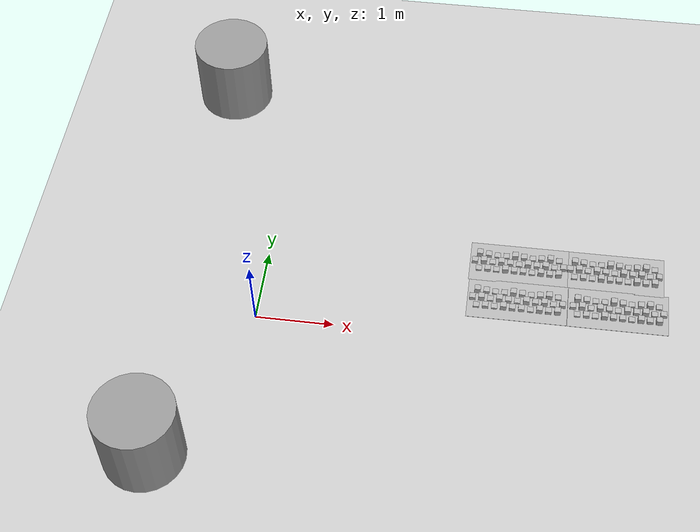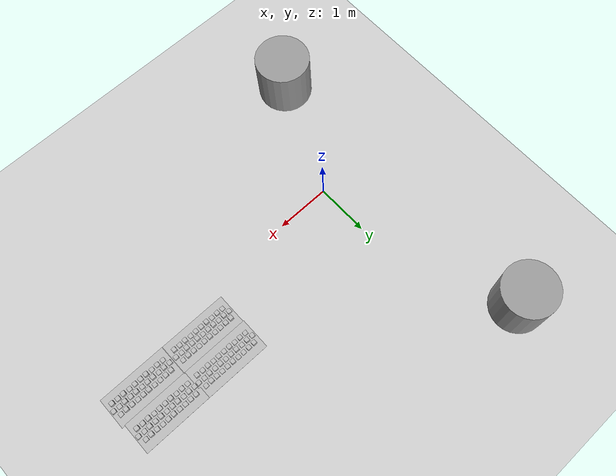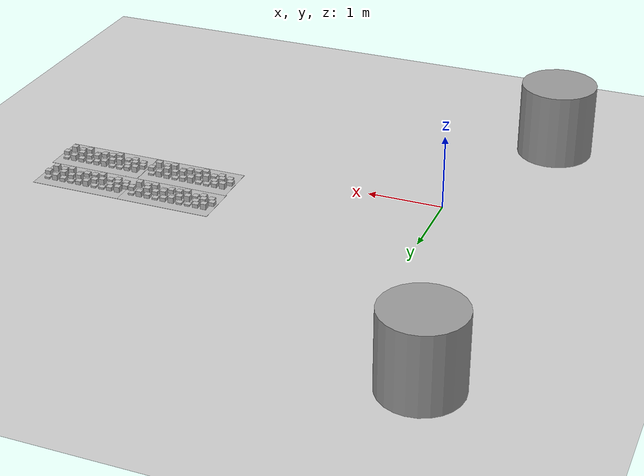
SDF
<sdf version="1.6">
 <world name="default">
  <model name="ground_plane">
   <static>1</static>
   <link name="link">
    <collision name="collision">
     <geometry><plane><normal>0 0 1</normal><size>100 100</size></plane></geometry>
     <surface><friction><ode><mu>100</mu><mu2>50</mu2></ode></friction></surface>
    </collision>
    <visual name="visual">
     <cast_shadows>0</cast_shadows>
     <geometry><plane><normal>0 0 1</normal><size>100 100</size></plane></geometry>
     <material>
      <script><uri>file://media/materials/scripts/gazebo.material</uri><name>Gazebo/Grey</name></script>
     </material>
    </visual>
   </link>
  </model>
  <model name="frc2016_roughterrain_clone">
   <static>1</static>
   <link name="link">
    <visual name="platform">
     <pose>0 0 0.08269 0 -0 0</pose>
     <geometry><box><size>1.27 0.5969 0.003175</size></box></geometry>
    </visual>
    <collision name="platform">
     <pose>0 0 0.08269 0 -0 0</pose>
     <geometry><box><size>1.27 0.5969 0.003175</size></box></geometry>
    </collision>
    <visual name="row1_block1_sm">
     <pose>0.51435 0.1143 0.09698 0 -0 0</pose>
     <geometry><box><size>0.0762 0.0762 0.0254</size></box></geometry>
    </visual>
    <collision name="row1_block1_sm">
     <pose>0.51435 0.1143 0.09698 0 -0 0</pose>
     <geometry><box><size>0.0762 0.0762 0.0254</size></box></geometry>
    </collision>
    <visual name="row1_block2_lg">
     <pose>0.40005 0.1143 0.12238 0 -0 0</pose>
     <geometry><box><size>0.0762 0.0762 0.0762</size></box></geometry>
    </visual>
    <collision name="row1_block2_lg">
     <pose>0.40005 0.1143 0.12238 0 -0 0</pose>
     <geometry><box><size>0.0762 0.0762 0.0762</size></box></geometry>
    </collision>
    <visual name="row1_block3_md">
     <pose>0.28575 0.1143 0.10968 0 -0 0</pose>
     <geometry><box><size>0.0762 0.0762 0.0508</size></box></geometry>
    </visual>
    <collision name="row1_block3_md">
     <pose>0.28575 0.1143 0.10968 0 -0 0</pose>
     <geometry><box><size>0.0762 0.0762 0.0508</size></box></geometry>
    </collision>
    <visual name="row1_block4_sm">
     <pose>0.17145 0.1143 0.09698 0 -0 0</pose>
     <geometry><box><size>0.0762 0.0762 0.0254</size></box></geometry>
    </visual>
    <collision name="row1_block4_sm">
     <pose>0.17145 0.1143 0.09698 0 -0 0</pose>
     <geometry><box><size>0.0762 0.0762 0.0254</size></box></geometry>
    </collision>
    <visual name="row1_block5_md">
     <pose>0.05715 0.1143 0.10968 0 -0 0</pose>
     <geometry><box><size>0.0762 0.0762 0.0508</size></box></geometry>
    </visual>
    <collision name="row1_block5_md">
     <pose>0.05715 0.1143 0.10968 0 -0 0</pose>
     <geometry><box><size>0.0762 0.0762 0.0508</size></box></geometry>
    </collision>
    <visual name="row1_block6_lg">
     <pose>-0.05715 0.1143 0.12238 0 -0 0</pose>
     <geometry><box><size>0.0762 0.0762 0.0762</size></box></geometry>
    </visual>
    <collision name="row1_block6_lg">
     <pose>-0.05715 0.1143 0.12238 0 -0 0</pose>
     <geometry><box><size>0.0762 0.0762 0.0762</size></box></geometry>
    </collision>
    <visual name="row1_block7_sm">
     <pose>-0.17145 0.1143 0.09698 0 -0 0</pose>
     <geometry><box><size>0.0762 0.0762 0.0254</size></box></geometry>
    </visual>
    <collision name="row1_block7_sm">
     <pose>-0.17145 0.1143 0.09698 0 -0 0</pose>
     <geometry><box><size>0.0762 0.0762 0.0254</size></box></geometry>
    </collision>
    <visual name="row1_block8_sm">
     <pose>-0.28575 0.1143 0.09698 0 -0 0</pose>
     <geometry><box><size>0.0762 0.0762 0.0254</size></box></geometry>
    </visual>
    <collision name="row1_block8_sm">
     <pose>-0.28575 0.1143 0.09698 0 -0 0</pose>
     <geometry><box><size>0.0762 0.0762 0.0254</size></box></geometry>
    </collision>
    <visual name="row1_block9_md">
     <pose>-0.40005 0.1143 0.10968 0 -0 0</pose>
     <geometry><box><size>0.0762 0.0762 0.0508</size></box></geometry>
    </visual>
    <collision name="row1_block9_md">
     <pose>-0.40005 0.1143 0.10968 0 -0 0</pose>
     <geometry><box><size>0.0762 0.0762 0.0508</size></box></geometry>
    </collision>
    <visual name="row1_block10_lg">
     <pose>-0.51435 0.1143 0.12238 0 -0 0</pose>
     <geometry><box><size>0.0762 0.0762 0.0762</size></box></geometry>
    </visual>
    <collision name="row1_block10_lg">
     <pose>-0.51435 0.1143 0.12238 0 -0 0</pose>
     <geometry><box><size>0.0762 0.0762 0.0762</size></box></geometry>
    </collision>
    <visual name="row2_block1_md">
     <pose>0.5715 0 0.10968 0 -0 0</pose>
     <geometry><box><size>0.0762 0.0762 0.0508</size></box></geometry>
    </visual>
    <collision name="row2_block1_md">
     <pose>0.5715 0 0.10968 0 -0 0</pose>
     <geometry><box><size>0.0762 0.0762 0.0508</size></box></geometry>
    </collision>
    <visual name="row2_block2_sm">
     <pose>0.4572 0 0.09698 0 -0 0</pose>
     <geometry><box><size>0.0762 0.0762 0.0254</size></box></geometry>
    </visual>
    <collision name="row2_block2_sm">
     <pose>0.4572 0 0.09698 0 -0 0</pose>
     <geometry><box><size>0.0762 0.0762 0.0254</size></box></geometry>
    </collision>
    <visual name="row2_block3_lg">
     <pose>0.3429 0 0.12238 0 -0 0</pose>
     <geometry><box><size>0.0762 0.0762 0.0762</size></box></geometry>
    </visual>
    <collision name="row2_block3_lg">
     <pose>0.3429 0 0.12238 0 -0 0</pose>
     <geometry><box><size>0.0762 0.0762 0.0762</size></box></geometry>
    </collision>
    <visual name="row2_block4_md">
     <pose>0.2286 0 0.10968 0 -0 0</pose>
     <geometry><box><size>0.0762 0.0762 0.0508</size></box></geometry>
    </visual>
    <collision name="row2_block4_md">
     <pose>0.2286 0 0.10968 0 -0 0</pose>
     <geometry><box><size>0.0762 0.0762 0.0508</size></box></geometry>
    </collision>
    <visual name="row2_block5_lg">
     <pose>0.1143 0 0.12238 0 -0 0</pose>
     <geometry><box><size>0.0762 0.0762 0.0762</size></box></geometry>
    </visual>
    <collision name="row2_block5_lg">
     <pose>0.1143 0 0.12238 0 -0 0</pose>
     <geometry><box><size>0.0762 0.0762 0.0762</size></box></geometry>
    </collision>
    <visual name="row2_block6_sm">
     <pose>0 0 0.09698 0 -0 0</pose>
     <geometry><box><size>0.0762 0.0762 0.0254</size></box></geometry>
    </visual>
    <collision name="row2_block6_sm">
     <pose>0 0 0.09698 0 -0 0</pose>
     <geometry><box><size>0.0762 0.0762 0.0254</size></box></geometry>
    </collision>
    <visual name="row2_block7_md">
     <pose>-0.1143 0 0.10968 0 -0 0</pose>
     <geometry><box><size>0.0762 0.0762 0.0508</size></box></geometry>
    </visual>
    <collision name="row2_block7_md">
     <pose>-0.1143 0 0.10968 0 -0 0</pose>
     <geometry><box><size>0.0762 0.0762 0.0508</size></box></geometry>
    </collision>
    <visual name="row2_block8_lg">
     <pose>-0.2286 0 0.12238 0 -0 0</pose>
     <geometry><box><size>0.0762 0.0762 0.0762</size></box></geometry>
    </visual>
    <collision name="row2_block8_lg">
     <pose>-0.2286 0 0.12238 0 -0 0</pose>
     <geometry><box><size>0.0762 0.0762 0.0762</size></box></geometry>
    </collision>
    <visual name="row2_block9_sm">
     <pose>-0.3429 0 0.09698 0 -0 0</pose>
     <geometry><box><size>0.0762 0.0762 0.0254</size></box></geometry>
    </visual>
    <collision name="row2_block9_sm">
     <pose>-0.3429 0 0.09698 0 -0 0</pose>
     <geometry><box><size>0.0762 0.0762 0.0254</size></box></geometry>
    </collision>
    <visual name="row2_block10_lg">
     <pose>-0.4572 0 0.12238 0 -0 0</pose>
     <geometry><box><size>0.0762 0.0762 0.0762</size></box></geometry>
    </visual>
    <collision name="row2_block10_lg">
     <pose>-0.4572 0 0.12238 0 -0 0</pose>
     <geometry><box><size>0.0762 0.0762 0.0762</size></box></geometry>
    </collision>
    <visual name="row2_block11_md">
     <pose>-0.5715 0 0.10968 0 -0 0</pose>
     <geometry><box><size>0.0762 0.0762 0.0508</size></box></geometry>
    </visual>
    <collision name="row2_block11_md">
     <pose>-0.5715 0 0.10968 0 -0 0</pose>
     <geometry><box><size>0.0762 0.0762 0.0508</size></box></geometry>
    </collision>
    <visual name="row3_block1_lg">
     <pose>0.51435 -0.1143 0.12238 0 -0 0</pose>
     <geometry><box><size>0.0762 0.0762 0.0762</size></box></geometry>
    </visual>
    <collision name="row3_block1_lg">
     <pose>0.51435 -0.1143 0.12238 0 -0 0</pose>
     <geometry><box><size>0.0762 0.0762 0.0762</size></box></geometry>
    </collision>
    <visual name="row3_block2_md">
     <pose>0.40005 -0.1143 0.10968 0 -0 0</pose>
     <geometry><box><size>0.0762 0.0762 0.0508</size></box></geometry>
    </visual>
    <collision name="row3_block2_md">
     <pose>0.40005 -0.1143 0.10968 0 -0 0</pose>
     <geometry><box><size>0.0762 0.0762 0.0508</size></box></geometry>
    </collision>
    <visual name="row3_block3_lg">
     <pose>0.28575 -0.1143 0.12238 0 -0 0</pose>
     <geometry><box><size>0.0762 0.0762 0.0762</size></box></geometry>
    </visual>
    <collision name="row3_block3_lg">
     <pose>0.28575 -0.1143 0.12238 0 -0 0</pose>
     <geometry><box><size>0.0762 0.0762 0.0762</size></box></geometry>
    </collision>
    <visual name="row3_block4_sm">
     <pose>0.17145 -0.1143 0.09698 0 -0 0</pose>
     <geometry><box><size>0.0762 0.0762 0.0254</size></box></geometry>
    </visual>
    <collision name="row3_block4_sm">
     <pose>0.17145 -0.1143 0.09698 0 -0 0</pose>
     <geometry><box><size>0.0762 0.0762 0.0254</size></box></geometry>
    </collision>
    <visual name="row3_block5_md">
     <pose>0.05715 -0.1143 0.10968 0 -0 0</pose>
     <geometry><box><size>0.0762 0.0762 0.0508</size></box></geometry>
    </visual>
    <collision name="row3_block5_md">
     <pose>0.05715 -0.1143 0.10968 0 -0 0</pose>
     <geometry><box><size>0.0762 0.0762 0.0508</size></box></geometry>
    </collision>
    <visual name="row3_block6_md">
     <pose>-0.05715 -0.1143 0.10968 0 -0 0</pose>
     <geometry><box><size>0.0762 0.0762 0.0508</size></box></geometry>
    </visual>
    <collision name="row3_block6_md">
     <pose>-0.05715 -0.1143 0.10968 0 -0 0</pose>
     <geometry><box><size>0.0762 0.0762 0.0508</size></box></geometry>
    </collision>
    <visual name="row3_block7_lg">
     <pose>-0.17145 -0.1143 0.12238 0 -0 0</pose>
     <geometry><box><size>0.0762 0.0762 0.0762</size></box></geometry>
    </visual>
    <collision name="row3_block7_lg">
     <pose>-0.17145 -0.1143 0.12238 0 -0 0</pose>
     <geometry><box><size>0.0762 0.0762 0.0762</size></box></geometry>
    </collision>
    <visual name="row3_block8_sm">
     <pose>-0.28575 -0.1143 0.09698 0 -0 0</pose>
     <geometry><box><size>0.0762 0.0762 0.0254</size></box></geometry>
    </visual>
    <collision name="row3_block8_sm">
     <pose>-0.28575 -0.1143 0.09698 0 -0 0</pose>
     <geometry><box><size>0.0762 0.0762 0.0254</size></box></geometry>
    </collision>
    <visual name="row3_block9_md">
     <pose>-0.40005 -0.1143 0.10968 0 -0 0</pose>
     <geometry><box><size>0.0762 0.0762 0.0508</size></box></geometry>
    </visual>
    <collision name="row3_block9_md">
     <pose>-0.40005 -0.1143 0.10968 0 -0 0</pose>
     <geometry><box><size>0.0762 0.0762 0.0508</size></box></geometry>
    </collision>
    <visual name="row3_block10_sm">
     <pose>-0.51435 -0.1143 0.09698 0 -0 0</pose>
     <geometry><box><size>0.0762 0.0762 0.0254</size></box></geometry>
    </visual>
    <collision name="row3_block10_sm">
     <pose>-0.51435 -0.1143 0.09698 0 -0 0</pose>
     <geometry><box><size>0.0762 0.0762 0.0254</size></box></geometry>
    </collision>
   </link>
   <pose>3.27378 0.571153 0 0 -0 0</pose>
  </model>
  <model name="frc2016_roughterrain_clone_0">
   <static>1</static>
   <link name="link">
    <visual name="platform">
     <pose>0 0 0.08269 0 -0 0</pose>
     <geometry><box><size>1.27 0.5969 0.003175</size></box></geometry>
    </visual>
    <collision name="platform">
     <pose>0 0 0.08269 0 -0 0</pose>
     <geometry><box><size>1.27 0.5969 0.003175</size></box></geometry>
    </collision>
    <visual name="row1_block1_sm">
     <pose>0.51435 0.1143 0.09698 0 -0 0</pose>
     <geometry><box><size>0.0762 0.0762 0.0254</size></box></geometry>
    </visual>
    <collision name="row1_block1_sm">
     <pose>0.51435 0.1143 0.09698 0 -0 0</pose>
     <geometry><box><size>0.0762 0.0762 0.0254</size></box></geometry>
    </collision>
    <visual name="row1_block2_lg">
     <pose>0.40005 0.1143 0.12238 0 -0 0</pose>
     <geometry><box><size>0.0762 0.0762 0.0762</size></box></geometry>
    </visual>
    <collision name="row1_block2_lg">
     <pose>0.40005 0.1143 0.12238 0 -0 0</pose>
     <geometry><box><size>0.0762 0.0762 0.0762</size></box></geometry>
    </collision>
    <visual name="row1_block3_md">
     <pose>0.28575 0.1143 0.10968 0 -0 0</pose>
     <geometry><box><size>0.0762 0.0762 0.0508</size></box></geometry>
    </visual>
    <collision name="row1_block3_md">
     <pose>0.28575 0.1143 0.10968 0 -0 0</pose>
     <geometry><box><size>0.0762 0.0762 0.0508</size></box></geometry>
    </collision>
    <visual name="row1_block4_sm">
     <pose>0.17145 0.1143 0.09698 0 -0 0</pose>
     <geometry><box><size>0.0762 0.0762 0.0254</size></box></geometry>
    </visual>
    <collision name="row1_block4_sm">
     <pose>0.17145 0.1143 0.09698 0 -0 0</pose>
     <geometry><box><size>0.0762 0.0762 0.0254</size></box></geometry>
    </collision>
    <visual name="row1_block5_md">
     <pose>0.05715 0.1143 0.10968 0 -0 0</pose>
     <geometry><box><size>0.0762 0.0762 0.0508</size></box></geometry>
    </visual>
    <collision name="row1_block5_md">
     <pose>0.05715 0.1143 0.10968 0 -0 0</pose>
     <geometry><box><size>0.0762 0.0762 0.0508</size></box></geometry>
    </collision>
    <visual name="row1_block6_lg">
     <pose>-0.05715 0.1143 0.12238 0 -0 0</pose>
     <geometry><box><size>0.0762 0.0762 0.0762</size></box></geometry>
    </visual>
    <collision name="row1_block6_lg">
     <pose>-0.05715 0.1143 0.12238 0 -0 0</pose>
     <geometry><box><size>0.0762 0.0762 0.0762</size></box></geometry>
    </collision>
    <visual name="row1_block7_sm">
     <pose>-0.17145 0.1143 0.09698 0 -0 0</pose>
     <geometry><box><size>0.0762 0.0762 0.0254</size></box></geometry>
    </visual>
    <collision name="row1_block7_sm">
     <pose>-0.17145 0.1143 0.09698 0 -0 0</pose>
     <geometry><box><size>0.0762 0.0762 0.0254</size></box></geometry>
    </collision>
    <visual name="row1_block8_sm">
     <pose>-0.28575 0.1143 0.09698 0 -0 0</pose>
     <geometry><box><size>0.0762 0.0762 0.0254</size></box></geometry>
    </visual>
    <collision name="row1_block8_sm">
     <pose>-0.28575 0.1143 0.09698 0 -0 0</pose>
     <geometry><box><size>0.0762 0.0762 0.0254</size></box></geometry>
    </collision>
    <visual name="row1_block9_md">
     <pose>-0.40005 0.1143 0.10968 0 -0 0</pose>
     <geometry><box><size>0.0762 0.0762 0.0508</size></box></geometry>
    </visual>
    <collision name="row1_block9_md">
     <pose>-0.40005 0.1143 0.10968 0 -0 0</pose>
     <geometry><box><size>0.0762 0.0762 0.0508</size></box></geometry>
    </collision>
    <visual name="row1_block10_lg">
     <pose>-0.51435 0.1143 0.12238 0 -0 0</pose>
     <geometry><box><size>0.0762 0.0762 0.0762</size></box></geometry>
    </visual>
    <collision name="row1_block10_lg">
     <pose>-0.51435 0.1143 0.12238 0 -0 0</pose>
     <geometry><box><size>0.0762 0.0762 0.0762</size></box></geometry>
    </collision>
    <visual name="row2_block1_md">
     <pose>0.5715 0 0.10968 0 -0 0</pose>
     <geometry><box><size>0.0762 0.0762 0.0508</size></box></geometry>
    </visual>
    <collision name="row2_block1_md">
     <pose>0.5715 0 0.10968 0 -0 0</pose>
     <geometry><box><size>0.0762 0.0762 0.0508</size></box></geometry>
    </collision>
    <visual name="row2_block2_sm">
     <pose>0.4572 0 0.09698 0 -0 0</pose>
     <geometry><box><size>0.0762 0.0762 0.0254</size></box></geometry>
    </visual>
    <collision name="row2_block2_sm">
     <pose>0.4572 0 0.09698 0 -0 0</pose>
     <geometry><box><size>0.0762 0.0762 0.0254</size></box></geometry>
    </collision>
    <visual name="row2_block3_lg">
     <pose>0.3429 0 0.12238 0 -0 0</pose>
     <geometry><box><size>0.0762 0.0762 0.0762</size></box></geometry>
    </visual>
    <collision name="row2_block3_lg">
     <pose>0.3429 0 0.12238 0 -0 0</pose>
     <geometry><box><size>0.0762 0.0762 0.0762</size></box></geometry>
    </collision>
    <visual name="row2_block4_md">
     <pose>0.2286 0 0.10968 0 -0 0</pose>
     <geometry><box><size>0.0762 0.0762 0.0508</size></box></geometry>
    </visual>
    <collision name="row2_block4_md">
     <pose>0.2286 0 0.10968 0 -0 0</pose>
     <geometry><box><size>0.0762 0.0762 0.0508</size></box></geometry>
    </collision>
    <visual name="row2_block5_lg">
     <pose>0.1143 0 0.12238 0 -0 0</pose>
     <geometry><box><size>0.0762 0.0762 0.0762</size></box></geometry>
    </visual>
    <collision name="row2_block5_lg">
     <pose>0.1143 0 0.12238 0 -0 0</pose>
     <geometry><box><size>0.0762 0.0762 0.0762</size></box></geometry>
    </collision>
    <visual name="row2_block6_sm">
     <pose>0 0 0.09698 0 -0 0</pose>
     <geometry><box><size>0.0762 0.0762 0.0254</size></box></geometry>
    </visual>
    <collision name="row2_block6_sm">
     <pose>0 0 0.09698 0 -0 0</pose>
     <geometry><box><size>0.0762 0.0762 0.0254</size></box></geometry>
    </collision>
    <visual name="row2_block7_md">
     <pose>-0.1143 0 0.10968 0 -0 0</pose>
     <geometry><box><size>0.0762 0.0762 0.0508</size></box></geometry>
    </visual>
    <collision name="row2_block7_md">
     <pose>-0.1143 0 0.10968 0 -0 0</pose>
     <geometry><box><size>0.0762 0.0762 0.0508</size></box></geometry>
    </collision>
    <visual name="row2_block8_lg">
     <pose>-0.2286 0 0.12238 0 -0 0</pose>
     <geometry><box><size>0.0762 0.0762 0.0762</size></box></geometry>
    </visual>
    <collision name="row2_block8_lg">
     <pose>-0.2286 0 0.12238 0 -0 0</pose>
     <geometry><box><size>0.0762 0.0762 0.0762</size></box></geometry>
    </collision>
    <visual name="row2_block9_sm">
     <pose>-0.3429 0 0.09698 0 -0 0</pose>
     <geometry><box><size>0.0762 0.0762 0.0254</size></box></geometry>
    </visual>
    <collision name="row2_block9_sm">
     <pose>-0.3429 0 0.09698 0 -0 0</pose>
     <geometry><box><size>0.0762 0.0762 0.0254</size></box></geometry>
    </collision>
    <visual name="row2_block10_lg">
     <pose>-0.4572 0 0.12238 0 -0 0</pose>
     <geometry><box><size>0.0762 0.0762 0.0762</size></box></geometry>
    </visual>
    <collision name="row2_block10_lg">
     <pose>-0.4572 0 0.12238 0 -0 0</pose>
     <geometry><box><size>0.0762 0.0762 0.0762</size></box></geometry>
    </collision>
    <visual name="row2_block11_md">
     <pose>-0.5715 0 0.10968 0 -0 0</pose>
     <geometry><box><size>0.0762 0.0762 0.0508</size></box></geometry>
    </visual>
    <collision name="row2_block11_md">
     <pose>-0.5715 0 0.10968 0 -0 0</pose>
     <geometry><box><size>0.0762 0.0762 0.0508</size></box></geometry>
    </collision>
    <visual name="row3_block1_lg">
     <pose>0.51435 -0.1143 0.12238 0 -0 0</pose>
     <geometry><box><size>0.0762 0.0762 0.0762</size></box></geometry>
    </visual>
    <collision name="row3_block1_lg">
     <pose>0.51435 -0.1143 0.12238 0 -0 0</pose>
     <geometry><box><size>0.0762 0.0762 0.0762</size></box></geometry>
    </collision>
    <visual name="row3_block2_md">
     <pose>0.40005 -0.1143 0.10968 0 -0 0</pose>
     <geometry><box><size>0.0762 0.0762 0.0508</size></box></geometry>
    </visual>
    <collision name="row3_block2_md">
     <pose>0.40005 -0.1143 0.10968 0 -0 0</pose>
     <geometry><box><size>0.0762 0.0762 0.0508</size></box></geometry>
    </collision>
    <visual name="row3_block3_lg">
     <pose>0.28575 -0.1143 0.12238 0 -0 0</pose>
     <geometry><box><size>0.0762 0.0762 0.0762</size></box></geometry>
    </visual>
    <collision name="row3_block3_lg">
     <pose>0.28575 -0.1143 0.12238 0 -0 0</pose>
     <geometry><box><size>0.0762 0.0762 0.0762</size></box></geometry>
    </collision>
    <visual name="row3_block4_sm">
     <pose>0.17145 -0.1143 0.09698 0 -0 0</pose>
     <geometry><box><size>0.0762 0.0762 0.0254</size></box></geometry>
    </visual>
    <collision name="row3_block4_sm">
     <pose>0.17145 -0.1143 0.09698 0 -0 0</pose>
     <geometry><box><size>0.0762 0.0762 0.0254</size></box></geometry>
    </collision>
    <visual name="row3_block5_md">
     <pose>0.05715 -0.1143 0.10968 0 -0 0</pose>
     <geometry><box><size>0.0762 0.0762 0.0508</size></box></geometry>
    </visual>
    <collision name="row3_block5_md">
     <pose>0.05715 -0.1143 0.10968 0 -0 0</pose>
     <geometry><box><size>0.0762 0.0762 0.0508</size></box></geometry>
    </collision>
    <visual name="row3_block6_md">
     <pose>-0.05715 -0.1143 0.10968 0 -0 0</pose>
     <geometry><box><size>0.0762 0.0762 0.0508</size></box></geometry>
    </visual>
    <collision name="row3_block6_md">
     <pose>-0.05715 -0.1143 0.10968 0 -0 0</pose>
     <geometry><box><size>0.0762 0.0762 0.0508</size></box></geometry>
    </collision>
    <visual name="row3_block7_lg">
     <pose>-0.17145 -0.1143 0.12238 0 -0 0</pose>
     <geometry><box><size>0.0762 0.0762 0.0762</size></box></geometry>
    </visual>
    <collision name="row3_block7_lg">
     <pose>-0.17145 -0.1143 0.12238 0 -0 0</pose>
     <geometry><box><size>0.0762 0.0762 0.0762</size></box></geometry>
    </collision>
    <visual name="row3_block8_sm">
     <pose>-0.28575 -0.1143 0.09698 0 -0 0</pose>
     <geometry><box><size>0.0762 0.0762 0.0254</size></box></geometry>
    </visual>
    <collision name="row3_block8_sm">
     <pose>-0.28575 -0.1143 0.09698 0 -0 0</pose>
     <geometry><box><size>0.0762 0.0762 0.0254</size></box></geometry>
    </collision>
    <visual name="row3_block9_md">
     <pose>-0.40005 -0.1143 0.10968 0 -0 0</pose>
     <geometry><box><size>0.0762 0.0762 0.0508</size></box></geometry>
    </visual>
    <collision name="row3_block9_md">
     <pose>-0.40005 -0.1143 0.10968 0 -0 0</pose>
     <geometry><box><size>0.0762 0.0762 0.0508</size></box></geometry>
    </collision>
    <visual name="row3_block10_sm">
     <pose>-0.51435 -0.1143 0.09698 0 -0 0</pose>
     <geometry><box><size>0.0762 0.0762 0.0254</size></box></geometry>
    </visual>
    <collision name="row3_block10_sm">
     <pose>-0.51435 -0.1143 0.09698 0 -0 0</pose>
     <geometry><box><size>0.0762 0.0762 0.0254</size></box></geometry>
    </collision>
   </link>
   <pose>4.54929 0.56993 0 0 -0 0</pose>
  </model>
  <model name="frc2016_roughterrain_clone_1">
   <static>1</static>
   <link name="link">
    <visual name="platform">
     <pose>0 0 0.08269 0 -0 0</pose>
     <geometry><box><size>1.27 0.5969 0.003175</size></box></geometry>
    </visual>
    <collision name="platform">
     <pose>0 0 0.08269 0 -0 0</pose>
     <geometry><box><size>1.27 0.5969 0.003175</size></box></geometry>
    </collision>
    <visual name="row1_block1_sm">
     <pose>0.51435 0.1143 0.09698 0 -0 0</pose>
     <geometry><box><size>0.0762 0.0762 0.0254</size></box></geometry>
    </visual>
    <collision name="row1_block1_sm">
     <pose>0.51435 0.1143 0.09698 0 -0 0</pose>
     <geometry><box><size>0.0762 0.0762 0.0254</size></box></geometry>
    </collision>
    <visual name="row1_block2_lg">
     <pose>0.40005 0.1143 0.12238 0 -0 0</pose>
     <geometry><box><size>0.0762 0.0762 0.0762</size></box></geometry>
    </visual>
    <collision name="row1_block2_lg">
     <pose>0.40005 0.1143 0.12238 0 -0 0</pose>
     <geometry><box><size>0.0762 0.0762 0.0762</size></box></geometry>
    </collision>
    <visual name="row1_block3_md">
     <pose>0.28575 0.1143 0.10968 0 -0 0</pose>
     <geometry><box><size>0.0762 0.0762 0.0508</size></box></geometry>
    </visual>
    <collision name="row1_block3_md">
     <pose>0.28575 0.1143 0.10968 0 -0 0</pose>
     <geometry><box><size>0.0762 0.0762 0.0508</size></box></geometry>
    </collision>
    <visual name="row1_block4_sm">
     <pose>0.17145 0.1143 0.09698 0 -0 0</pose>
     <geometry><box><size>0.0762 0.0762 0.0254</size></box></geometry>
    </visual>
    <collision name="row1_block4_sm">
     <pose>0.17145 0.1143 0.09698 0 -0 0</pose>
     <geometry><box><size>0.0762 0.0762 0.0254</size></box></geometry>
    </collision>
    <visual name="row1_block5_md">
     <pose>0.05715 0.1143 0.10968 0 -0 0</pose>
     <geometry><box><size>0.0762 0.0762 0.0508</size></box></geometry>
    </visual>
    <collision name="row1_block5_md">
     <pose>0.05715 0.1143 0.10968 0 -0 0</pose>
     <geometry><box><size>0.0762 0.0762 0.0508</size></box></geometry>
    </collision>
    <visual name="row1_block6_lg">
     <pose>-0.05715 0.1143 0.12238 0 -0 0</pose>
     <geometry><box><size>0.0762 0.0762 0.0762</size></box></geometry>
    </visual>
    <collision name="row1_block6_lg">
     <pose>-0.05715 0.1143 0.12238 0 -0 0</pose>
     <geometry><box><size>0.0762 0.0762 0.0762</size></box></geometry>
    </collision>
    <visual name="row1_block7_sm">
     <pose>-0.17145 0.1143 0.09698 0 -0 0</pose>
     <geometry><box><size>0.0762 0.0762 0.0254</size></box></geometry>
    </visual>
    <collision name="row1_block7_sm">
     <pose>-0.17145 0.1143 0.09698 0 -0 0</pose>
     <geometry><box><size>0.0762 0.0762 0.0254</size></box></geometry>
    </collision>
    <visual name="row1_block8_sm">
     <pose>-0.28575 0.1143 0.09698 0 -0 0</pose>
     <geometry><box><size>0.0762 0.0762 0.0254</size></box></geometry>
    </visual>
    <collision name="row1_block8_sm">
     <pose>-0.28575 0.1143 0.09698 0 -0 0</pose>
     <geometry><box><size>0.0762 0.0762 0.0254</size></box></geometry>
    </collision>
    <visual name="row1_block9_md">
     <pose>-0.40005 0.1143 0.10968 0 -0 0</pose>
     <geometry><box><size>0.0762 0.0762 0.0508</size></box></geometry>
    </visual>
    <collision name="row1_block9_md">
     <pose>-0.40005 0.1143 0.10968 0 -0 0</pose>
     <geometry><box><size>0.0762 0.0762 0.0508</size></box></geometry>
    </collision>
    <visual name="row1_block10_lg">
     <pose>-0.51435 0.1143 0.12238 0 -0 0</pose>
     <geometry><box><size>0.0762 0.0762 0.0762</size></box></geometry>
    </visual>
    <collision name="row1_block10_lg">
     <pose>-0.51435 0.1143 0.12238 0 -0 0</pose>
     <geometry><box><size>0.0762 0.0762 0.0762</size></box></geometry>
    </collision>
    <visual name="row2_block1_md">
     <pose>0.5715 0 0.10968 0 -0 0</pose>
     <geometry><box><size>0.0762 0.0762 0.0508</size></box></geometry>
    </visual>
    <collision name="row2_block1_md">
     <pose>0.5715 0 0.10968 0 -0 0</pose>
     <geometry><box><size>0.0762 0.0762 0.0508</size></box></geometry>
    </collision>
    <visual name="row2_block2_sm">
     <pose>0.4572 0 0.09698 0 -0 0</pose>
     <geometry><box><size>0.0762 0.0762 0.0254</size></box></geometry>
    </visual>
    <collision name="row2_block2_sm">
     <pose>0.4572 0 0.09698 0 -0 0</pose>
     <geometry><box><size>0.0762 0.0762 0.0254</size></box></geometry>
    </collision>
    <visual name="row2_block3_lg">
     <pose>0.3429 0 0.12238 0 -0 0</pose>
     <geometry><box><size>0.0762 0.0762 0.0762</size></box></geometry>
    </visual>
    <collision name="row2_block3_lg">
     <pose>0.3429 0 0.12238 0 -0 0</pose>
     <geometry><box><size>0.0762 0.0762 0.0762</size></box></geometry>
    </collision>
    <visual name="row2_block4_md">
     <pose>0.2286 0 0.10968 0 -0 0</pose>
     <geometry><box><size>0.0762 0.0762 0.0508</size></box></geometry>
    </visual>
    <collision name="row2_block4_md">
     <pose>0.2286 0 0.10968 0 -0 0</pose>
     <geometry><box><size>0.0762 0.0762 0.0508</size></box></geometry>
    </collision>
    <visual name="row2_block5_lg">
     <pose>0.1143 0 0.12238 0 -0 0</pose>
     <geometry><box><size>0.0762 0.0762 0.0762</size></box></geometry>
    </visual>
    <collision name="row2_block5_lg">
     <pose>0.1143 0 0.12238 0 -0 0</pose>
     <geometry><box><size>0.0762 0.0762 0.0762</size></box></geometry>
    </collision>
    <visual name="row2_block6_sm">
     <pose>0 0 0.09698 0 -0 0</pose>
     <geometry><box><size>0.0762 0.0762 0.0254</size></box></geometry>
    </visual>
    <collision name="row2_block6_sm">
     <pose>0 0 0.09698 0 -0 0</pose>
     <geometry><box><size>0.0762 0.0762 0.0254</size></box></geometry>
    </collision>
    <visual name="row2_block7_md">
     <pose>-0.1143 0 0.10968 0 -0 0</pose>
     <geometry><box><size>0.0762 0.0762 0.0508</size></box></geometry>
    </visual>
    <collision name="row2_block7_md">
     <pose>-0.1143 0 0.10968 0 -0 0</pose>
     <geometry><box><size>0.0762 0.0762 0.0508</size></box></geometry>
    </collision>
    <visual name="row2_block8_lg">
     <pose>-0.2286 0 0.12238 0 -0 0</pose>
     <geometry><box><size>0.0762 0.0762 0.0762</size></box></geometry>
    </visual>
    <collision name="row2_block8_lg">
     <pose>-0.2286 0 0.12238 0 -0 0</pose>
     <geometry><box><size>0.0762 0.0762 0.0762</size></box></geometry>
    </collision>
    <visual name="row2_block9_sm">
     <pose>-0.3429 0 0.09698 0 -0 0</pose>
     <geometry><box><size>0.0762 0.0762 0.0254</size></box></geometry>
    </visual>
    <collision name="row2_block9_sm">
     <pose>-0.3429 0 0.09698 0 -0 0</pose>
     <geometry><box><size>0.0762 0.0762 0.0254</size></box></geometry>
    </collision>
    <visual name="row2_block10_lg">
     <pose>-0.4572 0 0.12238 0 -0 0</pose>
     <geometry><box><size>0.0762 0.0762 0.0762</size></box></geometry>
    </visual>
    <collision name="row2_block10_lg">
     <pose>-0.4572 0 0.12238 0 -0 0</pose>
     <geometry><box><size>0.0762 0.0762 0.0762</size></box></geometry>
    </collision>
    <visual name="row2_block11_md">
     <pose>-0.5715 0 0.10968 0 -0 0</pose>
     <geometry><box><size>0.0762 0.0762 0.0508</size></box></geometry>
    </visual>
    <collision name="row2_block11_md">
     <pose>-0.5715 0 0.10968 0 -0 0</pose>
     <geometry><box><size>0.0762 0.0762 0.0508</size></box></geometry>
    </collision>
    <visual name="row3_block1_lg">
     <pose>0.51435 -0.1143 0.12238 0 -0 0</pose>
     <geometry><box><size>0.0762 0.0762 0.0762</size></box></geometry>
    </visual>
    <collision name="row3_block1_lg">
     <pose>0.51435 -0.1143 0.12238 0 -0 0</pose>
     <geometry><box><size>0.0762 0.0762 0.0762</size></box></geometry>
    </collision>
    <visual name="row3_block2_md">
     <pose>0.40005 -0.1143 0.10968 0 -0 0</pose>
     <geometry><box><size>0.0762 0.0762 0.0508</size></box></geometry>
    </visual>
    <collision name="row3_block2_md">
     <pose>0.40005 -0.1143 0.10968 0 -0 0</pose>
     <geometry><box><size>0.0762 0.0762 0.0508</size></box></geometry>
    </collision>
    <visual name="row3_block3_lg">
     <pose>0.28575 -0.1143 0.12238 0 -0 0</pose>
     <geometry><box><size>0.0762 0.0762 0.0762</size></box></geometry>
    </visual>
    <collision name="row3_block3_lg">
     <pose>0.28575 -0.1143 0.12238 0 -0 0</pose>
     <geometry><box><size>0.0762 0.0762 0.0762</size></box></geometry>
    </collision>
    <visual name="row3_block4_sm">
     <pose>0.17145 -0.1143 0.09698 0 -0 0</pose>
     <geometry><box><size>0.0762 0.0762 0.0254</size></box></geometry>
    </visual>
    <collision name="row3_block4_sm">
     <pose>0.17145 -0.1143 0.09698 0 -0 0</pose>
     <geometry><box><size>0.0762 0.0762 0.0254</size></box></geometry>
    </collision>
    <visual name="row3_block5_md">
     <pose>0.05715 -0.1143 0.10968 0 -0 0</pose>
     <geometry><box><size>0.0762 0.0762 0.0508</size></box></geometry>
    </visual>
    <collision name="row3_block5_md">
     <pose>0.05715 -0.1143 0.10968 0 -0 0</pose>
     <geometry><box><size>0.0762 0.0762 0.0508</size></box></geometry>
    </collision>
    <visual name="row3_block6_md">
     <pose>-0.05715 -0.1143 0.10968 0 -0 0</pose>
     <geometry><box><size>0.0762 0.0762 0.0508</size></box></geometry>
    </visual>
    <collision name="row3_block6_md">
     <pose>-0.05715 -0.1143 0.10968 0 -0 0</pose>
     <geometry><box><size>0.0762 0.0762 0.0508</size></box></geometry>
    </collision>
    <visual name="row3_block7_lg">
     <pose>-0.17145 -0.1143 0.12238 0 -0 0</pose>
     <geometry><box><size>0.0762 0.0762 0.0762</size></box></geometry>
    </visual>
    <collision name="row3_block7_lg">
     <pose>-0.17145 -0.1143 0.12238 0 -0 0</pose>
     <geometry><box><size>0.0762 0.0762 0.0762</size></box></geometry>
    </collision>
    <visual name="row3_block8_sm">
     <pose>-0.28575 -0.1143 0.09698 0 -0 0</pose>
     <geometry><box><size>0.0762 0.0762 0.0254</size></box></geometry>
    </visual>
    <collision name="row3_block8_sm">
     <pose>-0.28575 -0.1143 0.09698 0 -0 0</pose>
     <geometry><box><size>0.0762 0.0762 0.0254</size></box></geometry>
    </collision>
    <visual name="row3_block9_md">
     <pose>-0.40005 -0.1143 0.10968 0 -0 0</pose>
     <geometry><box><size>0.0762 0.0762 0.0508</size></box></geometry>
    </visual>
    <collision name="row3_block9_md">
     <pose>-0.40005 -0.1143 0.10968 0 -0 0</pose>
     <geometry><box><size>0.0762 0.0762 0.0508</size></box></geometry>
    </collision>
    <visual name="row3_block10_sm">
     <pose>-0.51435 -0.1143 0.09698 0 -0 0</pose>
     <geometry><box><size>0.0762 0.0762 0.0254</size></box></geometry>
    </visual>
    <collision name="row3_block10_sm">
     <pose>-0.51435 -0.1143 0.09698 0 -0 0</pose>
     <geometry><box><size>0.0762 0.0762 0.0254</size></box></geometry>
    </collision>
   </link>
   <pose>3.26021 1.15388 0 0 -0 0</pose>
  </model>
  <model name="frc2016_roughterrain_clone_2">
   <static>1</static>
   <link name="link">
    <visual name="platform">
     <pose>0 0 0.08269 0 -0 0</pose>
     <geometry><box><size>1.27 0.5969 0.003175</size></box></geometry>
    </visual>
    <collision name="platform">
     <pose>0 0 0.08269 0 -0 0</pose>
     <geometry><box><size>1.27 0.5969 0.003175</size></box></geometry>
    </collision>
    <visual name="row1_block1_sm">
     <pose>0.51435 0.1143 0.09698 0 -0 0</pose>
     <geometry><box><size>0.0762 0.0762 0.0254</size></box></geometry>
    </visual>
    <collision name="row1_block1_sm">
     <pose>0.51435 0.1143 0.09698 0 -0 0</pose>
     <geometry><box><size>0.0762 0.0762 0.0254</size></box></geometry>
    </collision>
    <visual name="row1_block2_lg">
     <pose>0.40005 0.1143 0.12238 0 -0 0</pose>
     <geometry><box><size>0.0762 0.0762 0.0762</size></box></geometry>
    </visual>
    <collision name="row1_block2_lg">
     <pose>0.40005 0.1143 0.12238 0 -0 0</pose>
     <geometry><box><size>0.0762 0.0762 0.0762</size></box></geometry>
    </collision>
    <visual name="row1_block3_md">
     <pose>0.28575 0.1143 0.10968 0 -0 0</pose>
     <geometry><box><size>0.0762 0.0762 0.0508</size></box></geometry>
    </visual>
    <collision name="row1_block3_md">
     <pose>0.28575 0.1143 0.10968 0 -0 0</pose>
     <geometry><box><size>0.0762 0.0762 0.0508</size></box></geometry>
    </collision>
    <visual name="row1_block4_sm">
     <pose>0.17145 0.1143 0.09698 0 -0 0</pose>
     <geometry><box><size>0.0762 0.0762 0.0254</size></box></geometry>
    </visual>
    <collision name="row1_block4_sm">
     <pose>0.17145 0.1143 0.09698 0 -0 0</pose>
     <geometry><box><size>0.0762 0.0762 0.0254</size></box></geometry>
    </collision>
    <visual name="row1_block5_md">
     <pose>0.05715 0.1143 0.10968 0 -0 0</pose>
     <geometry><box><size>0.0762 0.0762 0.0508</size></box></geometry>
    </visual>
    <collision name="row1_block5_md">
     <pose>0.05715 0.1143 0.10968 0 -0 0</pose>
     <geometry><box><size>0.0762 0.0762 0.0508</size></box></geometry>
    </collision>
    <visual name="row1_block6_lg">
     <pose>-0.05715 0.1143 0.12238 0 -0 0</pose>
     <geometry><box><size>0.0762 0.0762 0.0762</size></box></geometry>
    </visual>
    <collision name="row1_block6_lg">
     <pose>-0.05715 0.1143 0.12238 0 -0 0</pose>
     <geometry><box><size>0.0762 0.0762 0.0762</size></box></geometry>
    </collision>
    <visual name="row1_block7_sm">
     <pose>-0.17145 0.1143 0.09698 0 -0 0</pose>
     <geometry><box><size>0.0762 0.0762 0.0254</size></box></geometry>
    </visual>
    <collision name="row1_block7_sm">
     <pose>-0.17145 0.1143 0.09698 0 -0 0</pose>
     <geometry><box><size>0.0762 0.0762 0.0254</size></box></geometry>
    </collision>
    <visual name="row1_block8_sm">
     <pose>-0.28575 0.1143 0.09698 0 -0 0</pose>
     <geometry><box><size>0.0762 0.0762 0.0254</size></box></geometry>
    </visual>
    <collision name="row1_block8_sm">
     <pose>-0.28575 0.1143 0.09698 0 -0 0</pose>
     <geometry><box><size>0.0762 0.0762 0.0254</size></box></geometry>
    </collision>
    <visual name="row1_block9_md">
     <pose>-0.40005 0.1143 0.10968 0 -0 0</pose>
     <geometry><box><size>0.0762 0.0762 0.0508</size></box></geometry>
    </visual>
    <collision name="row1_block9_md">
     <pose>-0.40005 0.1143 0.10968 0 -0 0</pose>
     <geometry><box><size>0.0762 0.0762 0.0508</size></box></geometry>
    </collision>
    <visual name="row1_block10_lg">
     <pose>-0.51435 0.1143 0.12238 0 -0 0</pose>
     <geometry><box><size>0.0762 0.0762 0.0762</size></box></geometry>
    </visual>
    <collision name="row1_block10_lg">
     <pose>-0.51435 0.1143 0.12238 0 -0 0</pose>
     <geometry><box><size>0.0762 0.0762 0.0762</size></box></geometry>
    </collision>
    <visual name="row2_block1_md">
     <pose>0.5715 0 0.10968 0 -0 0</pose>
     <geometry><box><size>0.0762 0.0762 0.0508</size></box></geometry>
    </visual>
    <collision name="row2_block1_md">
     <pose>0.5715 0 0.10968 0 -0 0</pose>
     <geometry><box><size>0.0762 0.0762 0.0508</size></box></geometry>
    </collision>
    <visual name="row2_block2_sm">
     <pose>0.4572 0 0.09698 0 -0 0</pose>
     <geometry><box><size>0.0762 0.0762 0.0254</size></box></geometry>
    </visual>
    <collision name="row2_block2_sm">
     <pose>0.4572 0 0.09698 0 -0 0</pose>
     <geometry><box><size>0.0762 0.0762 0.0254</size></box></geometry>
    </collision>
    <visual name="row2_block3_lg">
     <pose>0.3429 0 0.12238 0 -0 0</pose>
     <geometry><box><size>0.0762 0.0762 0.0762</size></box></geometry>
    </visual>
    <collision name="row2_block3_lg">
     <pose>0.3429 0 0.12238 0 -0 0</pose>
     <geometry><box><size>0.0762 0.0762 0.0762</size></box></geometry>
    </collision>
    <visual name="row2_block4_md">
     <pose>0.2286 0 0.10968 0 -0 0</pose>
     <geometry><box><size>0.0762 0.0762 0.0508</size></box></geometry>
    </visual>
    <collision name="row2_block4_md">
     <pose>0.2286 0 0.10968 0 -0 0</pose>
     <geometry><box><size>0.0762 0.0762 0.0508</size></box></geometry>
    </collision>
    <visual name="row2_block5_lg">
     <pose>0.1143 0 0.12238 0 -0 0</pose>
     <geometry><box><size>0.0762 0.0762 0.0762</size></box></geometry>
    </visual>
    <collision name="row2_block5_lg">
     <pose>0.1143 0 0.12238 0 -0 0</pose>
     <geometry><box><size>0.0762 0.0762 0.0762</size></box></geometry>
    </collision>
    <visual name="row2_block6_sm">
     <pose>0 0 0.09698 0 -0 0</pose>
     <geometry><box><size>0.0762 0.0762 0.0254</size></box></geometry>
    </visual>
    <collision name="row2_block6_sm">
     <pose>0 0 0.09698 0 -0 0</pose>
     <geometry><box><size>0.0762 0.0762 0.0254</size></box></geometry>
    </collision>
    <visual name="row2_block7_md">
     <pose>-0.1143 0 0.10968 0 -0 0</pose>
     <geometry><box><size>0.0762 0.0762 0.0508</size></box></geometry>
    </visual>
    <collision name="row2_block7_md">
     <pose>-0.1143 0 0.10968 0 -0 0</pose>
     <geometry><box><size>0.0762 0.0762 0.0508</size></box></geometry>
    </collision>
    <visual name="row2_block8_lg">
     <pose>-0.2286 0 0.12238 0 -0 0</pose>
     <geometry><box><size>0.0762 0.0762 0.0762</size></box></geometry>
    </visual>
    <collision name="row2_block8_lg">
     <pose>-0.2286 0 0.12238 0 -0 0</pose>
     <geometry><box><size>0.0762 0.0762 0.0762</size></box></geometry>
    </collision>
    <visual name="row2_block9_sm">
     <pose>-0.3429 0 0.09698 0 -0 0</pose>
     <geometry><box><size>0.0762 0.0762 0.0254</size></box></geometry>
    </visual>
    <collision name="row2_block9_sm">
     <pose>-0.3429 0 0.09698 0 -0 0</pose>
     <geometry><box><size>0.0762 0.0762 0.0254</size></box></geometry>
    </collision>
    <visual name="row2_block10_lg">
     <pose>-0.4572 0 0.12238 0 -0 0</pose>
     <geometry><box><size>0.0762 0.0762 0.0762</size></box></geometry>
    </visual>
    <collision name="row2_block10_lg">
     <pose>-0.4572 0 0.12238 0 -0 0</pose>
     <geometry><box><size>0.0762 0.0762 0.0762</size></box></geometry>
    </collision>
    <visual name="row2_block11_md">
     <pose>-0.5715 0 0.10968 0 -0 0</pose>
     <geometry><box><size>0.0762 0.0762 0.0508</size></box></geometry>
    </visual>
    <collision name="row2_block11_md">
     <pose>-0.5715 0 0.10968 0 -0 0</pose>
     <geometry><box><size>0.0762 0.0762 0.0508</size></box></geometry>
    </collision>
    <visual name="row3_block1_lg">
     <pose>0.51435 -0.1143 0.12238 0 -0 0</pose>
     <geometry><box><size>0.0762 0.0762 0.0762</size></box></geometry>
    </visual>
    <collision name="row3_block1_lg">
     <pose>0.51435 -0.1143 0.12238 0 -0 0</pose>
     <geometry><box><size>0.0762 0.0762 0.0762</size></box></geometry>
    </collision>
    <visual name="row3_block2_md">
     <pose>0.40005 -0.1143 0.10968 0 -0 0</pose>
     <geometry><box><size>0.0762 0.0762 0.0508</size></box></geometry>
    </visual>
    <collision name="row3_block2_md">
     <pose>0.40005 -0.1143 0.10968 0 -0 0</pose>
     <geometry><box><size>0.0762 0.0762 0.0508</size></box></geometry>
    </collision>
    <visual name="row3_block3_lg">
     <pose>0.28575 -0.1143 0.12238 0 -0 0</pose>
     <geometry><box><size>0.0762 0.0762 0.0762</size></box></geometry>
    </visual>
    <collision name="row3_block3_lg">
     <pose>0.28575 -0.1143 0.12238 0 -0 0</pose>
     <geometry><box><size>0.0762 0.0762 0.0762</size></box></geometry>
    </collision>
    <visual name="row3_block4_sm">
     <pose>0.17145 -0.1143 0.09698 0 -0 0</pose>
     <geometry><box><size>0.0762 0.0762 0.0254</size></box></geometry>
    </visual>
    <collision name="row3_block4_sm">
     <pose>0.17145 -0.1143 0.09698 0 -0 0</pose>
     <geometry><box><size>0.0762 0.0762 0.0254</size></box></geometry>
    </collision>
    <visual name="row3_block5_md">
     <pose>0.05715 -0.1143 0.10968 0 -0 0</pose>
     <geometry><box><size>0.0762 0.0762 0.0508</size></box></geometry>
    </visual>
    <collision name="row3_block5_md">
     <pose>0.05715 -0.1143 0.10968 0 -0 0</pose>
     <geometry><box><size>0.0762 0.0762 0.0508</size></box></geometry>
    </collision>
    <visual name="row3_block6_md">
     <pose>-0.05715 -0.1143 0.10968 0 -0 0</pose>
     <geometry><box><size>0.0762 0.0762 0.0508</size></box></geometry>
    </visual>
    <collision name="row3_block6_md">
     <pose>-0.05715 -0.1143 0.10968 0 -0 0</pose>
     <geometry><box><size>0.0762 0.0762 0.0508</size></box></geometry>
    </collision>
    <visual name="row3_block7_lg">
     <pose>-0.17145 -0.1143 0.12238 0 -0 0</pose>
     <geometry><box><size>0.0762 0.0762 0.0762</size></box></geometry>
    </visual>
    <collision name="row3_block7_lg">
     <pose>-0.17145 -0.1143 0.12238 0 -0 0</pose>
     <geometry><box><size>0.0762 0.0762 0.0762</size></box></geometry>
    </collision>
    <visual name="row3_block8_sm">
     <pose>-0.28575 -0.1143 0.09698 0 -0 0</pose>
     <geometry><box><size>0.0762 0.0762 0.0254</size></box></geometry>
    </visual>
    <collision name="row3_block8_sm">
     <pose>-0.28575 -0.1143 0.09698 0 -0 0</pose>
     <geometry><box><size>0.0762 0.0762 0.0254</size></box></geometry>
    </collision>
    <visual name="row3_block9_md">
     <pose>-0.40005 -0.1143 0.10968 0 -0 0</pose>
     <geometry><box><size>0.0762 0.0762 0.0508</size></box></geometry>
    </visual>
    <collision name="row3_block9_md">
     <pose>-0.40005 -0.1143 0.10968 0 -0 0</pose>
     <geometry><box><size>0.0762 0.0762 0.0508</size></box></geometry>
    </collision>
    <visual name="row3_block10_sm">
     <pose>-0.51435 -0.1143 0.09698 0 -0 0</pose>
     <geometry><box><size>0.0762 0.0762 0.0254</size></box></geometry>
    </visual>
    <collision name="row3_block10_sm">
     <pose>-0.51435 -0.1143 0.09698 0 -0 0</pose>
     <geometry><box><size>0.0762 0.0762 0.0254</size></box></geometry>
    </collision>
   </link>
   <pose>4.4928 1.15227 0 0 -0 0</pose>
  </model>
  <model name="unit_cylinder">
   <pose>-0.971186 3.82165 0.499993 -3e-06 -4e-06 -0</pose>
   <link name="link">
    <inertial>
     <mass>1</mass>
     <inertia><ixx>0.145833</ixx><ixy>0</ixy><ixz>0</ixz><iyy>0.145833</iyy><iyz>0</iyz><izz>0.125</izz></inertia>
    </inertial>
    <collision name="collision">
     <geometry><cylinder><radius>0.5</radius><length>1</length></cylinder></geometry>
    </collision>
    <visual name="visual">
     <geometry><cylinder><radius>0.5</radius><length>1</length></cylinder></geometry>
     <material>
      <script><name>Gazebo/Grey</name><uri>file://media/materials/scripts/gazebo.material</uri></script>
     </material>
    </visual>
   </link>
  </model>
  <model name="unit_cylinder_0">
   <pose>-0.939441 -2.09341 0.499997 3e-06 4e-06 -0</pose>
   <link name="link">
    <inertial>
     <mass>1</mass>
     <inertia><ixx>0.145833</ixx><ixy>0</ixy><ixz>0</ixz><iyy>0.145833</iyy><iyz>0</iyz><izz>0.125</izz></inertia>
    </inertial>
    <collision name="collision">
     <geometry><cylinder><radius>0.5</radius><length>1</length></cylinder></geometry>
    </collision>
    <visual name="visual">
     <geometry><cylinder><radius>0.5</radius><length>1</length></cylinder></geometry>
     <material>
      <script><name>Gazebo/Grey</name><uri>file://media/materials/scripts/gazebo.material</uri></script>
     </material>
    </visual>
   </link>
  </model>
 </world>
</sdf>
